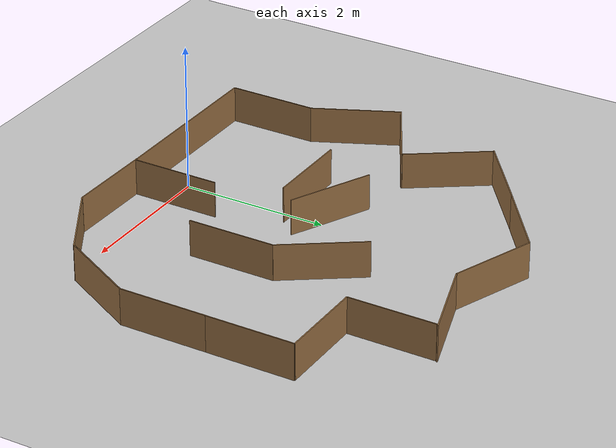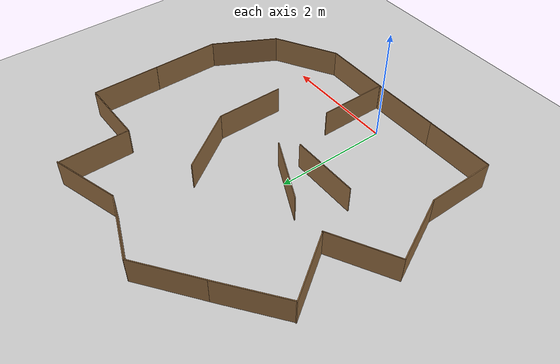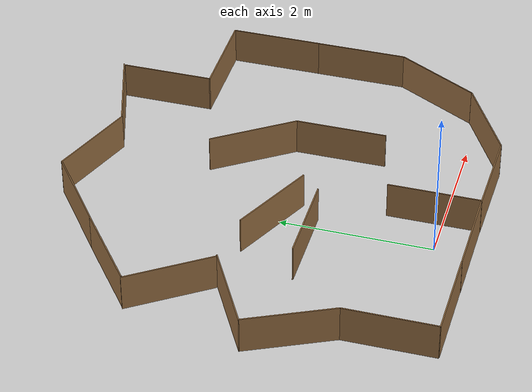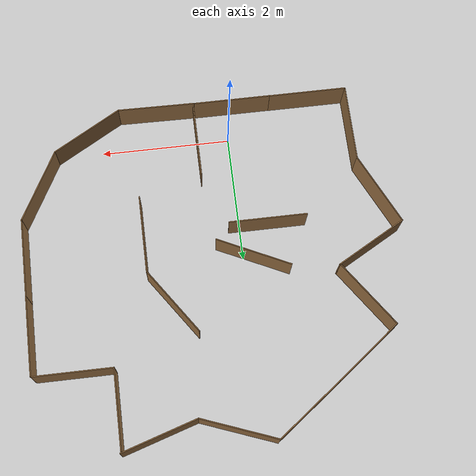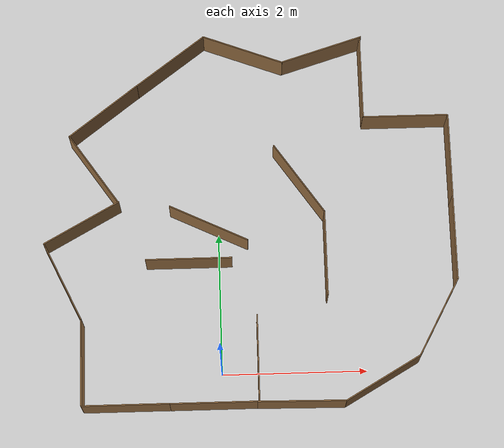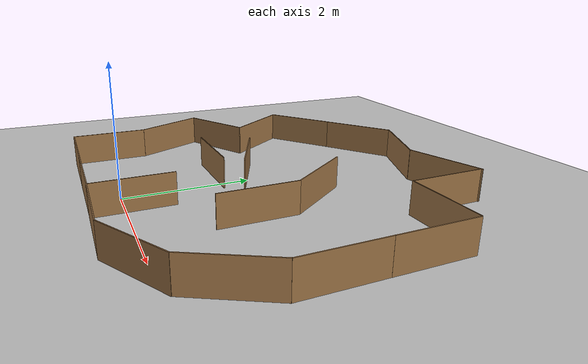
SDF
<sdf version="1.6">
 <world name="default">
  <scene><ambient>0.5 0.5 0.5 1.0</ambient><shadows>0</shadows></scene>
  <model name="ground_plane">
   <static>1</static>
   <link name="link">
    <collision name="collision">
     <geometry><plane><normal>0 0 1</normal><size>100 100</size></plane></geometry>
     <surface><friction><ode><mu>100</mu><mu2>50</mu2></ode></friction></surface>
    </collision>
    <visual name="visual">
     <cast_shadows>0</cast_shadows>
     <geometry><plane><normal>0 0 1</normal><size>100 100</size></plane></geometry>
     <material>
      <script><uri>file://media/materials/scripts/gazebo.material</uri><name>Gazebo/Grey</name></script>
     </material>
    </visual>
   </link>
  </model>
  <light name="sun" type="directional">
   <pose>0 0 10 0 -0 0</pose>
   <diffuse>0.8 0.8 0.8 1</diffuse>
   <specular>0.1 0.1 0.1 1</specular>
   <attenuation>
    <range>1000</range>
    <constant>0.9</constant>
    <linear>0.01</linear>
    <quadratic>0.001</quadratic>
   </attenuation>
   <direction>-0.5 0.5 -1</direction>
  </light>
  <model name="wall_0">
   <pose>-1.908932 0.129803 0 0 -0 0</pose>
   <static>1</static>
   <link name="cardboard_wall::link">
    <pose>0 0 0.25 0 -0 0</pose>
    <collision name="collision"><geometry><box><size>0.015 1.2 0.5</size></box></geometry></collision>
    <visual name="visual">
     <geometry><box><size>0.015 1.2 0.5</size></box></geometry>
     <material>
      <ambient>0.5 0.5 0.5 1</ambient>
      <diffuse>0.57 0.417 0.25 1</diffuse>
      <specular>0.1 0.1 0.1 1</specular>
      <emissive>0 0 0 0</emissive>
     </material>
    </visual>
   </link>
  </model>
  <model name="wall_1">
   <pose>-1.902161 2.103332 0 0 0 -1.063039</pose>
   <static>1</static>
   <link name="cardboard_wall::link">
    <pose>0 0 0.25 0 0 0</pose>
    <collision name="collision"><geometry><box><size>0.015 1.2 0.5</size></box></geometry></collision>
    <visual name="visual">
     <geometry><box><size>0.015 1.2 0.5</size></box></geometry>
     <material>
      <ambient>0.5 0.5 0.5 1</ambient>
      <diffuse>0.57 0.417 0.25 1</diffuse>
      <specular>0.1 0.1 0.1 1</specular>
      <emissive>0 0 0 0</emissive>
     </material>
    </visual>
   </link>
  </model>
  <model name="wall_2">
   <pose>-1.31036 -0.471372 0 0 0 1.571</pose>
   <static>1</static>
   <link name="cardboard_wall::link">
    <pose>0 0 0.25 0 -0 0</pose>
    <collision name="collision"><geometry><box><size>0.015 1.2 0.5</size></box></geometry></collision>
    <visual name="visual">
     <geometry><box><size>0.015 1.2 0.5</size></box></geometry>
     <material>
      <ambient>0.5 0.5 0.5 1</ambient>
      <diffuse>0.57 0.417 0.25 1</diffuse>
      <specular>0.1 0.1 0.1 1</specular>
      <emissive>0 0 0 0</emissive>
     </material>
    </visual>
   </link>
  </model>
  <model name="wall_3">
   <pose>-0.11385 -0.47283 0 0 -0 1.571</pose>
   <static>1</static>
   <link name="cardboard_wall::link">
    <pose>0 0 0.25 0 -0 0</pose>
    <collision name="collision"><geometry><box><size>0.015 1.2 0.5</size></box></geometry></collision>
    <visual name="visual">
     <geometry><box><size>0.015 1.2 0.5</size></box></geometry>
     <material>
      <ambient>0.5 0.5 0.5 1</ambient>
      <diffuse>0.57 0.417 0.25 1</diffuse>
      <specular>0.1 0.1 0.1 1</specular>
      <emissive>0 0 0 0</emissive>
     </material>
    </visual>
   </link>
  </model>
  <model name="wall_4">
   <pose>2.19273 -0.194333 0 0 -0 2.094</pose>
   <static>1</static>
   <link name="cardboard_wall::link">
    <pose>0 0 0.25 0 -0 0</pose>
    <collision name="collision"><geometry><box><size>0.015 1.2 0.5</size></box></geometry></collision>
    <visual name="visual">
     <geometry><box><size>0.015 1.2 0.5</size></box></geometry>
     <material>
      <ambient>0.5 0.5 0.5 1</ambient>
      <diffuse>0.57 0.417 0.25 1</diffuse>
      <specular>0.1 0.1 0.1 1</specular>
      <emissive>0 0 0 0</emissive>
     </material>
    </visual>
   </link>
  </model>
  <gravity>0 0 -9.8</gravity>
  <magnetic_field>6e-06 2.3e-05 -4.2e-05</magnetic_field>
  <atmosphere type="adiabatic"/>
  <physics name="default_physics" default="0" type="ode">
   <max_step_size>0.001</max_step_size>
   <real_time_factor>1</real_time_factor>
   <real_time_update_rate>1000</real_time_update_rate>
  </physics>
  <scene><ambient>0.4 0.4 0.4 1</ambient><background>0.7 0.7 0.7 1</background><shadows>1</shadows></scene>
  <spherical_coordinates>
   <surface_model>EARTH_WGS84</surface_model>
   <latitude_deg>0</latitude_deg>
   <longitude_deg>0</longitude_deg>
   <elevation>0</elevation>
   <heading_deg>0</heading_deg>
  </spherical_coordinates>
  <model name="papptown_wall">
   <pose>2.99213 0.632201 0 0 0 -0.496041</pose>
   <static>1</static>
   <link name="link">
    <pose>0 0 0.25 0 -0 0</pose>
    <collision name="collision"><geometry><box><size>0.015 1.2 0.5</size></box></geometry></collision>
    <visual name="visual">
     <geometry><box><size>0.015 1.2 0.5</size></box></geometry>
     <material>
      <ambient>0.5 0.5 0.5 1</ambient>
      <diffuse>0.57 0.417 0.25 1</diffuse>
      <specular>0.1 0.1 0.1 1</specular>
      <emissive>0 0 0 0</emissive>
     </material>
    </visual>
   </link>
  </model>
  <model name="cardboard_wall_0">
   <pose>3.27717 1.75486 0 0 -0 0</pose>
   <static>1</static>
   <link name="link">
    <pose>0 0 0.25 0 -0 0</pose>
    <collision name="collision"><geometry><box><size>0.015 1.2 0.5</size></box></geometry></collision>
    <visual name="visual">
     <geometry><box><size>0.015 1.2 0.5</size></box></geometry>
     <material>
      <ambient>0.5 0.5 0.5 1</ambient>
      <diffuse>0.57 0.417 0.25 1</diffuse>
      <specular>0.1 0.1 0.1 1</specular>
      <emissive>0 0 0 0</emissive>
     </material>
    </visual>
   </link>
  </model>
  <model name="cardboard_wall_1">
   <pose>3.27813 2.95004 0 0 -0 0</pose>
   <static>1</static>
   <link name="link">
    <pose>0 0 0.25 0 -0 0</pose>
    <collision name="collision"><geometry><box><size>0.015 1.2 0.5</size></box></geometry></collision>
    <visual name="visual">
     <geometry><box><size>0.015 1.2 0.5</size></box></geometry>
     <material>
      <ambient>0.5 0.5 0.5 1</ambient>
      <diffuse>0.57 0.417 0.25 1</diffuse>
      <specular>0.1 0.1 0.1 1</specular>
      <emissive>0 0 0 0</emissive>
     </material>
    </visual>
   </link>
  </model>
  <model name="cardboard_wall_2">
   <pose>2.082237 4.1509 0 0 0 0</pose>
   <static>1</static>
   <link name="link">
    <pose>0 0 0.25 0 -0 0</pose>
    <collision name="collision"><geometry><box><size>0.015 1.2 0.5</size></box></geometry></collision>
    <visual name="visual">
     <geometry><box><size>0.015 1.2 0.5</size></box></geometry>
     <material>
      <ambient>0.5 0.5 0.5 1</ambient>
      <diffuse>0.57 0.417 0.25 1</diffuse>
      <specular>0.1 0.1 0.1 1</specular>
      <emissive>0 0 0 0</emissive>
     </material>
    </visual>
   </link>
  </model>
  <model name="cardboard_wall_4">
   <pose>1.531467 4.591352 0 0 0 -1.267093</pose>
   <static>1</static>
   <link name="link">
    <pose>0 0 0.25 0 -0 0</pose>
    <collision name="collision"><geometry><box><size>0.015 1.2 0.5</size></box></geometry></collision>
    <visual name="visual">
     <geometry><box><size>0.015 1.2 0.5</size></box></geometry>
     <material>
      <ambient>0.5 0.5 0.5 1</ambient>
      <diffuse>0.57 0.417 0.25 1</diffuse>
      <specular>0.1 0.1 0.1 1</specular>
      <emissive>0 0 0 0</emissive>
     </material>
    </visual>
   </link>
  </model>
  <model name="cardboard_wall_6">
   <pose>0.40415 4.62139 0 0 -0 1.20901</pose>
   <static>1</static>
   <link name="link">
    <pose>0 0 0.25 0 -0 0</pose>
    <collision name="collision"><geometry><box><size>0.015 1.2 0.5</size></box></geometry></collision>
    <visual name="visual">
     <geometry><box><size>0.015 1.2 0.5</size></box></geometry>
     <material>
      <ambient>0.5 0.5 0.5 1</ambient>
      <diffuse>0.57 0.417 0.25 1</diffuse>
      <specular>0.1 0.1 0.1 1</specular>
      <emissive>0 0 0 0</emissive>
     </material>
    </visual>
   </link>
  </model>
  <model name="cardboard_wall_7">
   <pose>-2.163054 1.268556 0 0 0 0.439611</pose>
   <static>1</static>
   <link name="link">
    <pose>0 0 0.25 0 -0 0</pose>
    <collision name="collision"><geometry><box><size>0.015 1.2 0.5</size></box></geometry></collision>
    <visual name="visual">
     <geometry><box><size>0.015 1.2 0.5</size></box></geometry>
     <material>
      <ambient>0.5 0.5 0.5 1</ambient>
      <diffuse>0.57 0.417 0.25 1</diffuse>
      <specular>0.1 0.1 0.1 1</specular>
      <emissive>0 0 0 0</emissive>
     </material>
    </visual>
   </link>
  </model>
  <model name="cardboard_wall_8">
   <pose>-1.732862 2.89135 -0.009289 0 -0 0.602379</pose>
   <static>1</static>
   <link name="link">
    <pose>0 0 0.25 0 -0 0</pose>
    <collision name="collision"><geometry><box><size>0.015 1.2 0.5</size></box></geometry></collision>
    <visual name="visual">
     <geometry><box><size>0.015 1.2 0.5</size></box></geometry>
     <material>
      <ambient>0.5 0.5 0.5 1</ambient>
      <diffuse>0.57 0.417 0.25 1</diffuse>
      <specular>0.1 0.1 0.1 1</specular>
      <emissive>0 0 0 0</emissive>
     </material>
    </visual>
   </link>
  </model>
  <model name="cardboard_wall_9">
   <pose>-0.63104 4.47149 0 0 0 -0.92579</pose>
   <static>1</static>
   <link name="link">
    <pose>0 0 0.25 0 -0 0</pose>
    <collision name="collision"><geometry><box><size>0.015 1.2 0.5</size></box></geometry></collision>
    <visual name="visual">
     <geometry><box><size>0.015 1.2 0.5</size></box></geometry>
     <material>
      <ambient>0.5 0.5 0.5 1</ambient>
      <diffuse>0.57 0.417 0.25 1</diffuse>
      <specular>0.1 0.1 0.1 1</specular>
      <emissive>0 0 0 0</emissive>
     </material>
    </visual>
   </link>
  </model>
  <model name="cardboard_wall_10">
   <pose>-1.586482 3.74568 0 0 0 -0.913867</pose>
   <static>1</static>
   <link name="link">
    <pose>0 0 0.25 0 -0 0</pose>
    <collision name="collision"><geometry><box><size>0.015 1.2 0.5</size></box></geometry></collision>
    <visual name="visual">
     <geometry><box><size>0.015 1.2 0.5</size></box></geometry>
     <material>
      <ambient>0.5 0.5 0.5 1</ambient>
      <diffuse>0.57 0.417 0.25 1</diffuse>
      <specular>0.1 0.1 0.1 1</specular>
      <emissive>0 0 0 0</emissive>
     </material>
    </visual>
   </link>
  </model>
  <model name="cardboard_wall_11">
   <pose>0.5 0.129601 0 0 -0 0</pose>
   <static>1</static>
   <link name="link">
    <pose>0 0 0.25 0 -0 0</pose>
    <collision name="collision"><geometry><box><size>0.015 1.2 0.5</size></box></geometry></collision>
    <visual name="visual">
     <geometry><box><size>0.015 1.2 0.5</size></box></geometry>
     <material>
      <ambient>0.5 0.5 0.5 1</ambient>
      <diffuse>0.57 0.417 0.25 1</diffuse>
      <specular>0.1 0.1 0.1 1</specular>
      <emissive>0 0 0 0</emissive>
     </material>
    </visual>
   </link>
  </model>
  <model name="cardboard_wall_12">
   <pose>2.67466 3.55304 0 0 0 1.5708</pose>
   <static>1</static>
   <link name="link">
    <pose>0 0 0.25 0 -0 0</pose>
    <collision name="collision"><geometry><box><size>0.015 1.2 0.5</size></box></geometry></collision>
    <visual name="visual">
     <geometry><box><size>0.015 1.2 0.5</size></box></geometry>
     <material>
      <ambient>0.5 0.5 0.5 1</ambient>
      <diffuse>0.57 0.417 0.25 1</diffuse>
      <specular>0.1 0.1 0.1 1</specular>
      <emissive>0 0 0 0</emissive>
     </material>
    </visual>
   </link>
  </model>
  <model name="cardboard_wall_13">
   <pose>-0.42102 1.54719 0 0 0 1.5708</pose>
   <static>1</static>
   <link name="link">
    <pose>0 0 0.25 0 -0 0</pose>
    <collision name="collision"><geometry><box><size>0.015 1.2 0.5</size></box></geometry></collision>
    <visual name="visual">
     <geometry><box><size>0.015 1.2 0.5</size></box></geometry>
     <material>
      <ambient>0.5 0.5 0.5 1</ambient>
      <diffuse>0.57 0.417 0.25 1</diffuse>
      <specular>0.1 0.1 0.1 1</specular>
      <emissive>0 0 0 0</emissive>
     </material>
    </visual>
   </link>
  </model>
  <model name="cardboard_wall_14">
   <pose>1.141335 2.670660 0 0 0 0.602378</pose>
   <static>1</static>
   <link name="link">
    <pose>0 0 0.25 0 -0 0</pose>
    <collision name="collision"><geometry><box><size>0.015 1.2 0.5</size></box></geometry></collision>
    <visual name="visual">
     <geometry><box><size>0.015 1.2 0.5</size></box></geometry>
     <material>
      <ambient>0.5 0.5 0.5 1</ambient>
      <diffuse>0.57 0.417 0.25 1</diffuse>
      <specular>0.1 0.1 0.1 1</specular>
      <emissive>0 0 0 0</emissive>
     </material>
    </visual>
   </link>
  </model>
  <model name="cardboard_wall_15">
   <pose>1.48118 1.58183 0 0 0 0</pose>
   <static>1</static>
   <link name="link">
    <pose>0 0 0.25 0 -0 0</pose>
    <collision name="collision"><geometry><box><size>0.015 1.2 0.5</size></box></geometry></collision>
    <visual name="visual">
     <geometry><box><size>0.015 1.2 0.5</size></box></geometry>
     <material>
      <ambient>0.5 0.5 0.5 1</ambient>
      <diffuse>0.57 0.417 0.25 1</diffuse>
      <specular>0.1 0.1 0.1 1</specular>
      <emissive>0 0 0 0</emissive>
     </material>
    </visual>
   </link>
  </model>
  <model name="cardboard_wall_16">
   <pose>-0.136002 2.052702 0 0 0 0.561861</pose>
   <static>1</static>
   <link name="link">
    <pose>0 0 0.25 0 0 0.561861</pose>
    <collision name="collision"><geometry><box><size>0.015 1.2 0.5</size></box></geometry></collision>
    <visual name="visual">
     <geometry><box><size>0.015 1.2 0.5</size></box></geometry>
     <material>
      <ambient>0.5 0.5 0.5 1</ambient>
      <diffuse>0.57 0.417 0.25 1</diffuse>
      <specular>0.1 0.1 0.1 1</specular>
      <emissive>0 0 0 0</emissive>
     </material>
    </visual>
   </link>
  </model>
  <model name="cardboard_wall_17">
   <pose>1.07406 -0.483414 0 0 -0 1.55682</pose>
   <static>1</static>
   <link name="link">
    <pose>0 0 0.25 0 -0 0</pose>
    <collision name="collision"><geometry><box><size>0.015 1.2 0.5</size></box></geometry></collision>
    <visual name="visual">
     <geometry><box><size>0.015 1.2 0.5</size></box></geometry>
     <material>
      <ambient>0.5 0.5 0.5 1</ambient>
      <diffuse>0.57 0.417 0.25 1</diffuse>
      <specular>0.1 0.1 0.1 1</specular>
      <emissive>0 0 0 0</emissive>
     </material>
    </visual>
   </link>
  </model>
  <physics name="default_physics" default="0" type="ode">
   <max_step_size>0.005</max_step_size>
   <real_time_factor>1</real_time_factor>
   <real_time_update_rate>100</real_time_update_rate>
  </physics>
 </world>
</sdf>
